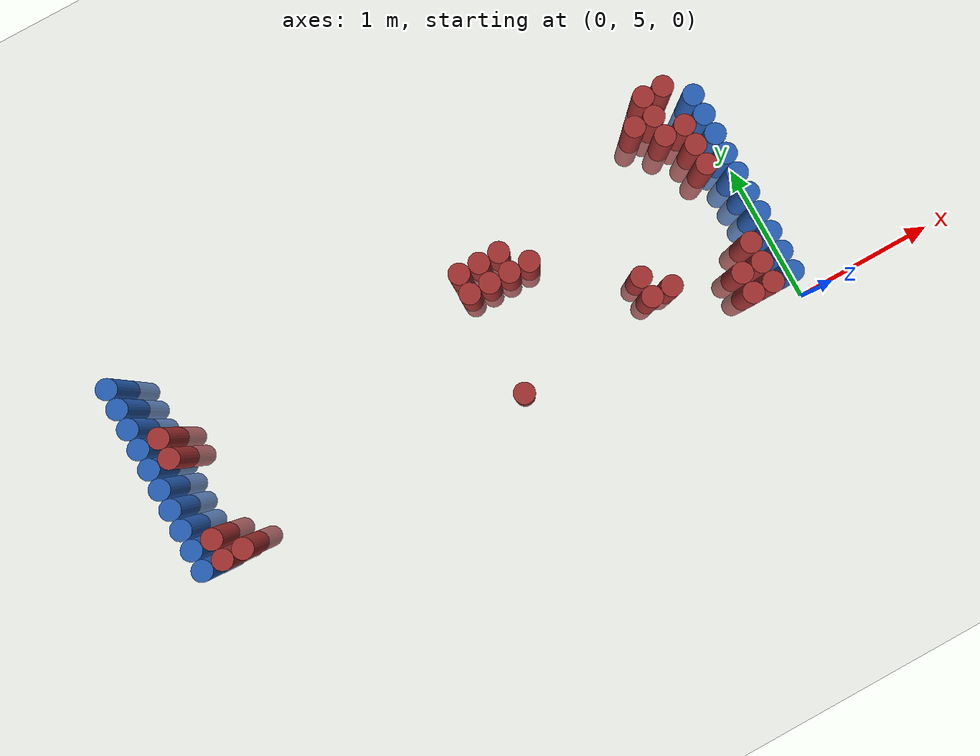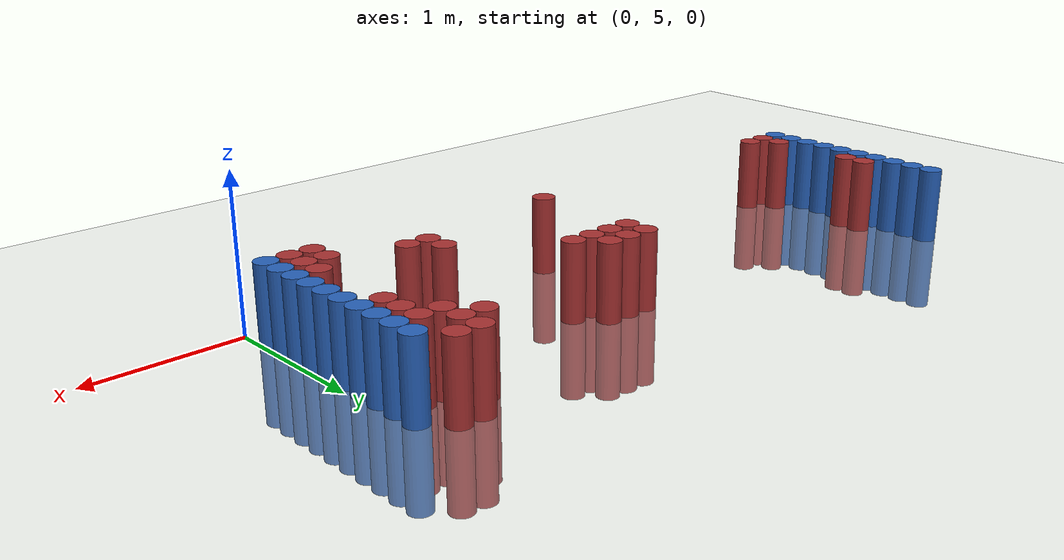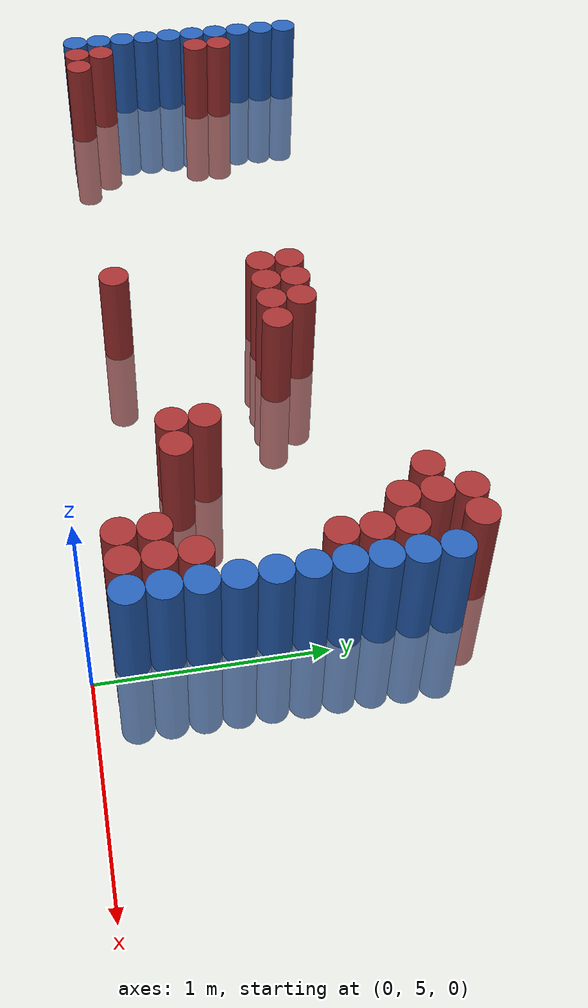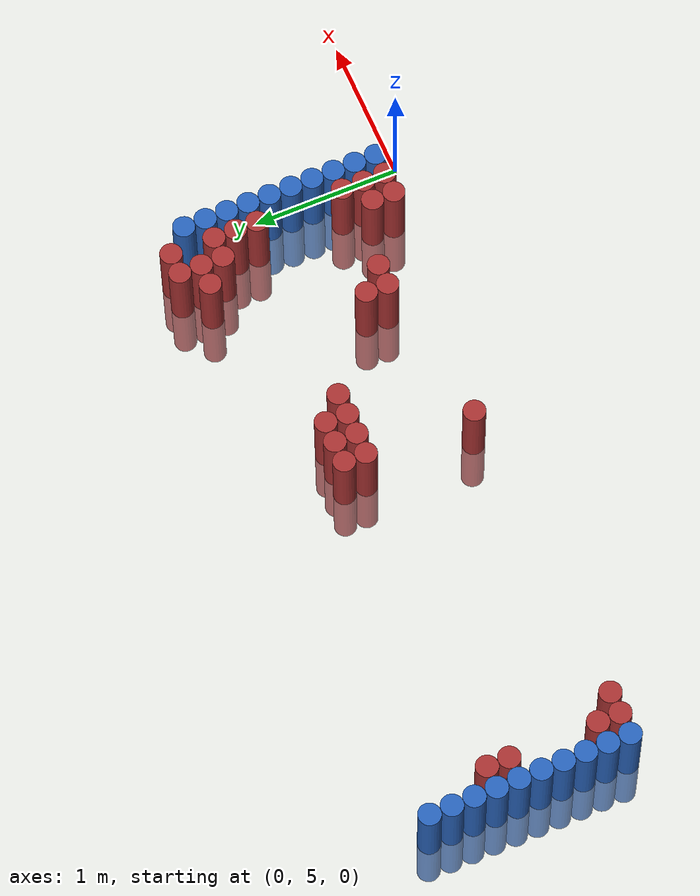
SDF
<sdf version="1.6">
 <world name="default">
  <model name="ground_plane">
   <static>1</static>
   <link name="link">
    <collision name="collision">
     <geometry><plane><normal>0 0 1</normal><size>100 100</size></plane></geometry>
     <surface><friction><ode><mu>100</mu><mu2>50</mu2></ode></friction></surface>
    </collision>
    <visual name="visual">
     <cast_shadows>0</cast_shadows>
     <geometry><plane><normal>0 0 1</normal><size>100 100</size></plane></geometry>
     <material>
      <script><uri>file://media/materials/scripts/gazebo.material</uri><name>Gazebo/Grey</name></script>
     </material>
    </visual>
   </link>
  </model>
  <model name="unit_cylinder_97">
   <static>1</static>
   <pose>-4.425000 5.325000 0.000000 0.000000 0.000000 0.000000</pose>
   <link name="link">
    <inertial>
     <mass>1</mass>
     <inertia><ixx>0.145833</ixx><ixy>0</ixy><ixz>0</ixz><iyy>0.145833</iyy><iyz>0</iyz><izz>0.125</izz></inertia>
    </inertial>
    <collision name="collision">
     <geometry><cylinder><radius>0.075000</radius><length>1</length></cylinder></geometry>
    </collision>
    <visual name="visual">
     <geometry><cylinder><radius>0.075000</radius><length>1</length></cylinder></geometry>
     <material>
      <ambient>0.152000 0.379000 0.720000 1</ambient>
      <diffuse>0.152000 0.379000 0.720000 1</diffuse>
     </material>
     <material>
      <script><name>Gazebo/Grey</name><uri>file://media/materials/scripts/gazebo.material</uri></script>
     </material>
    </visual>
   </link>
  </model>
  <model name="unit_cylinder_98">
   <static>1</static>
   <pose>-4.425000 5.475000 0.000000 0.000000 0.000000 0.000000</pose>
   <link name="link">
    <inertial>
     <mass>1</mass>
     <inertia><ixx>0.145833</ixx><ixy>0</ixy><ixz>0</ixz><iyy>0.145833</iyy><iyz>0</iyz><izz>0.125</izz></inertia>
    </inertial>
    <collision name="collision">
     <geometry><cylinder><radius>0.075000</radius><length>1</length></cylinder></geometry>
    </collision>
    <visual name="visual">
     <geometry><cylinder><radius>0.075000</radius><length>1</length></cylinder></geometry>
     <material>
      <ambient>0.152000 0.379000 0.720000 1</ambient>
      <diffuse>0.152000 0.379000 0.720000 1</diffuse>
     </material>
     <material>
      <script><name>Gazebo/Grey</name><uri>file://media/materials/scripts/gazebo.material</uri></script>
     </material>
    </visual>
   </link>
  </model>
  <model name="unit_cylinder_99">
   <static>1</static>
   <pose>-4.425000 5.625000 0.000000 0.000000 0.000000 0.000000</pose>
   <link name="link">
    <inertial>
     <mass>1</mass>
     <inertia><ixx>0.145833</ixx><ixy>0</ixy><ixz>0</ixz><iyy>0.145833</iyy><iyz>0</iyz><izz>0.125</izz></inertia>
    </inertial>
    <collision name="collision">
     <geometry><cylinder><radius>0.075000</radius><length>1</length></cylinder></geometry>
    </collision>
    <visual name="visual">
     <geometry><cylinder><radius>0.075000</radius><length>1</length></cylinder></geometry>
     <material>
      <ambient>0.152000 0.379000 0.720000 1</ambient>
      <diffuse>0.152000 0.379000 0.720000 1</diffuse>
     </material>
     <material>
      <script><name>Gazebo/Grey</name><uri>file://media/materials/scripts/gazebo.material</uri></script>
     </material>
    </visual>
   </link>
  </model>
  <model name="unit_cylinder_100">
   <static>1</static>
   <pose>-4.425000 5.775000 0.000000 0.000000 0.000000 0.000000</pose>
   <link name="link">
    <inertial>
     <mass>1</mass>
     <inertia><ixx>0.145833</ixx><ixy>0</ixy><ixz>0</ixz><iyy>0.145833</iyy><iyz>0</iyz><izz>0.125</izz></inertia>
    </inertial>
    <collision name="collision">
     <geometry><cylinder><radius>0.075000</radius><length>1</length></cylinder></geometry>
    </collision>
    <visual name="visual">
     <geometry><cylinder><radius>0.075000</radius><length>1</length></cylinder></geometry>
     <material>
      <ambient>0.152000 0.379000 0.720000 1</ambient>
      <diffuse>0.152000 0.379000 0.720000 1</diffuse>
     </material>
     <material>
      <script><name>Gazebo/Grey</name><uri>file://media/materials/scripts/gazebo.material</uri></script>
     </material>
    </visual>
   </link>
  </model>
  <model name="unit_cylinder_101">
   <static>1</static>
   <pose>-4.425000 5.925000 0.000000 0.000000 0.000000 0.000000</pose>
   <link name="link">
    <inertial>
     <mass>1</mass>
     <inertia><ixx>0.145833</ixx><ixy>0</ixy><ixz>0</ixz><iyy>0.145833</iyy><iyz>0</iyz><izz>0.125</izz></inertia>
    </inertial>
    <collision name="collision">
     <geometry><cylinder><radius>0.075000</radius><length>1</length></cylinder></geometry>
    </collision>
    <visual name="visual">
     <geometry><cylinder><radius>0.075000</radius><length>1</length></cylinder></geometry>
     <material>
      <ambient>0.152000 0.379000 0.720000 1</ambient>
      <diffuse>0.152000 0.379000 0.720000 1</diffuse>
     </material>
     <material>
      <script><name>Gazebo/Grey</name><uri>file://media/materials/scripts/gazebo.material</uri></script>
     </material>
    </visual>
   </link>
  </model>
  <model name="unit_cylinder_102">
   <static>1</static>
   <pose>-4.425000 6.075000 0.000000 0.000000 0.000000 0.000000</pose>
   <link name="link">
    <inertial>
     <mass>1</mass>
     <inertia><ixx>0.145833</ixx><ixy>0</ixy><ixz>0</ixz><iyy>0.145833</iyy><iyz>0</iyz><izz>0.125</izz></inertia>
    </inertial>
    <collision name="collision">
     <geometry><cylinder><radius>0.075000</radius><length>1</length></cylinder></geometry>
    </collision>
    <visual name="visual">
     <geometry><cylinder><radius>0.075000</radius><length>1</length></cylinder></geometry>
     <material>
      <ambient>0.152000 0.379000 0.720000 1</ambient>
      <diffuse>0.152000 0.379000 0.720000 1</diffuse>
     </material>
     <material>
      <script><name>Gazebo/Grey</name><uri>file://media/materials/scripts/gazebo.material</uri></script>
     </material>
    </visual>
   </link>
  </model>
  <model name="unit_cylinder_103">
   <static>1</static>
   <pose>-4.425000 6.225000 0.000000 0.000000 0.000000 0.000000</pose>
   <link name="link">
    <inertial>
     <mass>1</mass>
     <inertia><ixx>0.145833</ixx><ixy>0</ixy><ixz>0</ixz><iyy>0.145833</iyy><iyz>0</iyz><izz>0.125</izz></inertia>
    </inertial>
    <collision name="collision">
     <geometry><cylinder><radius>0.075000</radius><length>1</length></cylinder></geometry>
    </collision>
    <visual name="visual">
     <geometry><cylinder><radius>0.075000</radius><length>1</length></cylinder></geometry>
     <material>
      <ambient>0.152000 0.379000 0.720000 1</ambient>
      <diffuse>0.152000 0.379000 0.720000 1</diffuse>
     </material>
     <material>
      <script><name>Gazebo/Grey</name><uri>file://media/materials/scripts/gazebo.material</uri></script>
     </material>
    </visual>
   </link>
  </model>
  <model name="unit_cylinder_104">
   <static>1</static>
   <pose>-4.425000 6.375000 0.000000 0.000000 0.000000 0.000000</pose>
   <link name="link">
    <inertial>
     <mass>1</mass>
     <inertia><ixx>0.145833</ixx><ixy>0</ixy><ixz>0</ixz><iyy>0.145833</iyy><iyz>0</iyz><izz>0.125</izz></inertia>
    </inertial>
    <collision name="collision">
     <geometry><cylinder><radius>0.075000</radius><length>1</length></cylinder></geometry>
    </collision>
    <visual name="visual">
     <geometry><cylinder><radius>0.075000</radius><length>1</length></cylinder></geometry>
     <material>
      <ambient>0.152000 0.379000 0.720000 1</ambient>
      <diffuse>0.152000 0.379000 0.720000 1</diffuse>
     </material>
     <material>
      <script><name>Gazebo/Grey</name><uri>file://media/materials/scripts/gazebo.material</uri></script>
     </material>
    </visual>
   </link>
  </model>
  <model name="unit_cylinder_105">
   <static>1</static>
   <pose>-4.425000 6.525000 0.000000 0.000000 0.000000 0.000000</pose>
   <link name="link">
    <inertial>
     <mass>1</mass>
     <inertia><ixx>0.145833</ixx><ixy>0</ixy><ixz>0</ixz><iyy>0.145833</iyy><iyz>0</iyz><izz>0.125</izz></inertia>
    </inertial>
    <collision name="collision">
     <geometry><cylinder><radius>0.075000</radius><length>1</length></cylinder></geometry>
    </collision>
    <visual name="visual">
     <geometry><cylinder><radius>0.075000</radius><length>1</length></cylinder></geometry>
     <material>
      <ambient>0.152000 0.379000 0.720000 1</ambient>
      <diffuse>0.152000 0.379000 0.720000 1</diffuse>
     </material>
     <material>
      <script><name>Gazebo/Grey</name><uri>file://media/materials/scripts/gazebo.material</uri></script>
     </material>
    </visual>
   </link>
  </model>
  <model name="unit_cylinder_106">
   <static>1</static>
   <pose>-4.425000 6.675000 0.000000 0.000000 0.000000 0.000000</pose>
   <link name="link">
    <inertial>
     <mass>1</mass>
     <inertia><ixx>0.145833</ixx><ixy>0</ixy><ixz>0</ixz><iyy>0.145833</iyy><iyz>0</iyz><izz>0.125</izz></inertia>
    </inertial>
    <collision name="collision">
     <geometry><cylinder><radius>0.075000</radius><length>1</length></cylinder></geometry>
    </collision>
    <visual name="visual">
     <geometry><cylinder><radius>0.075000</radius><length>1</length></cylinder></geometry>
     <material>
      <ambient>0.152000 0.379000 0.720000 1</ambient>
      <diffuse>0.152000 0.379000 0.720000 1</diffuse>
     </material>
     <material>
      <script><name>Gazebo/Grey</name><uri>file://media/materials/scripts/gazebo.material</uri></script>
     </material>
    </visual>
   </link>
  </model>
  <model name="unit_cylinder_126">
   <static>1</static>
   <pose>-4.275000 5.325000 0.000000 0.000000 0.000000 0.000000</pose>
   <link name="link">
    <inertial>
     <mass>1</mass>
     <inertia><ixx>0.145833</ixx><ixy>0</ixy><ixz>0</ixz><iyy>0.145833</iyy><iyz>0</iyz><izz>0.125</izz></inertia>
    </inertial>
    <collision name="collision">
     <geometry><cylinder><radius>0.075000</radius><length>1</length></cylinder></geometry>
    </collision>
    <visual name="visual">
     <geometry><cylinder><radius>0.075000</radius><length>1</length></cylinder></geometry>
     <material>
      <ambient>0.648000 0.192000 0.192000 1</ambient>
      <diffuse>0.648000 0.192000 0.192000 1</diffuse>
     </material>
     <material>
      <script><name>Gazebo/Grey</name><uri>file://media/materials/scripts/gazebo.material</uri></script>
     </material>
    </visual>
   </link>
  </model>
  <model name="unit_cylinder_127">
   <static>1</static>
   <pose>-4.275000 5.475000 0.000000 0.000000 0.000000 0.000000</pose>
   <link name="link">
    <inertial>
     <mass>1</mass>
     <inertia><ixx>0.145833</ixx><ixy>0</ixy><ixz>0</ixz><iyy>0.145833</iyy><iyz>0</iyz><izz>0.125</izz></inertia>
    </inertial>
    <collision name="collision">
     <geometry><cylinder><radius>0.075000</radius><length>1</length></cylinder></geometry>
    </collision>
    <visual name="visual">
     <geometry><cylinder><radius>0.075000</radius><length>1</length></cylinder></geometry>
     <material>
      <ambient>0.648000 0.192000 0.192000 1</ambient>
      <diffuse>0.648000 0.192000 0.192000 1</diffuse>
     </material>
     <material>
      <script><name>Gazebo/Grey</name><uri>file://media/materials/scripts/gazebo.material</uri></script>
     </material>
    </visual>
   </link>
  </model>
  <model name="unit_cylinder_128">
   <static>1</static>
   <pose>-4.275000 6.075000 0.000000 0.000000 0.000000 0.000000</pose>
   <link name="link">
    <inertial>
     <mass>1</mass>
     <inertia><ixx>0.145833</ixx><ixy>0</ixy><ixz>0</ixz><iyy>0.145833</iyy><iyz>0</iyz><izz>0.125</izz></inertia>
    </inertial>
    <collision name="collision">
     <geometry><cylinder><radius>0.075000</radius><length>1</length></cylinder></geometry>
    </collision>
    <visual name="visual">
     <geometry><cylinder><radius>0.075000</radius><length>1</length></cylinder></geometry>
     <material>
      <ambient>0.648000 0.192000 0.192000 1</ambient>
      <diffuse>0.648000 0.192000 0.192000 1</diffuse>
     </material>
     <material>
      <script><name>Gazebo/Grey</name><uri>file://media/materials/scripts/gazebo.material</uri></script>
     </material>
    </visual>
   </link>
  </model>
  <model name="unit_cylinder_129">
   <static>1</static>
   <pose>-4.275000 6.225000 0.000000 0.000000 0.000000 0.000000</pose>
   <link name="link">
    <inertial>
     <mass>1</mass>
     <inertia><ixx>0.145833</ixx><ixy>0</ixy><ixz>0</ixz><iyy>0.145833</iyy><iyz>0</iyz><izz>0.125</izz></inertia>
    </inertial>
    <collision name="collision">
     <geometry><cylinder><radius>0.075000</radius><length>1</length></cylinder></geometry>
    </collision>
    <visual name="visual">
     <geometry><cylinder><radius>0.075000</radius><length>1</length></cylinder></geometry>
     <material>
      <ambient>0.648000 0.192000 0.192000 1</ambient>
      <diffuse>0.648000 0.192000 0.192000 1</diffuse>
     </material>
     <material>
      <script><name>Gazebo/Grey</name><uri>file://media/materials/scripts/gazebo.material</uri></script>
     </material>
    </visual>
   </link>
  </model>
  <model name="unit_cylinder_140">
   <static>1</static>
   <pose>-4.125000 5.325000 0.000000 0.000000 0.000000 0.000000</pose>
   <link name="link">
    <inertial>
     <mass>1</mass>
     <inertia><ixx>0.145833</ixx><ixy>0</ixy><ixz>0</ixz><iyy>0.145833</iyy><iyz>0</iyz><izz>0.125</izz></inertia>
    </inertial>
    <collision name="collision">
     <geometry><cylinder><radius>0.075000</radius><length>1</length></cylinder></geometry>
    </collision>
    <visual name="visual">
     <geometry><cylinder><radius>0.075000</radius><length>1</length></cylinder></geometry>
     <material>
      <ambient>0.648000 0.192000 0.192000 1</ambient>
      <diffuse>0.648000 0.192000 0.192000 1</diffuse>
     </material>
     <material>
      <script><name>Gazebo/Grey</name><uri>file://media/materials/scripts/gazebo.material</uri></script>
     </material>
    </visual>
   </link>
  </model>
  <model name="unit_cylinder_191">
   <static>1</static>
   <pose>-2.025000 5.325000 0.000000 0.000000 0.000000 0.000000</pose>
   <link name="link">
    <inertial>
     <mass>1</mass>
     <inertia><ixx>0.145833</ixx><ixy>0</ixy><ixz>0</ixz><iyy>0.145833</iyy><iyz>0</iyz><izz>0.125</izz></inertia>
    </inertial>
    <collision name="collision">
     <geometry><cylinder><radius>0.075000</radius><length>1</length></cylinder></geometry>
    </collision>
    <visual name="visual">
     <geometry><cylinder><radius>0.075000</radius><length>1</length></cylinder></geometry>
     <material>
      <ambient>0.648000 0.192000 0.192000 1</ambient>
      <diffuse>0.648000 0.192000 0.192000 1</diffuse>
     </material>
     <material>
      <script><name>Gazebo/Grey</name><uri>file://media/materials/scripts/gazebo.material</uri></script>
     </material>
    </visual>
   </link>
  </model>
  <model name="unit_cylinder_192">
   <static>1</static>
   <pose>-2.025000 6.075000 0.000000 0.000000 0.000000 0.000000</pose>
   <link name="link">
    <inertial>
     <mass>1</mass>
     <inertia><ixx>0.145833</ixx><ixy>0</ixy><ixz>0</ixz><iyy>0.145833</iyy><iyz>0</iyz><izz>0.125</izz></inertia>
    </inertial>
    <collision name="collision">
     <geometry><cylinder><radius>0.075000</radius><length>1</length></cylinder></geometry>
    </collision>
    <visual name="visual">
     <geometry><cylinder><radius>0.075000</radius><length>1</length></cylinder></geometry>
     <material>
      <ambient>0.648000 0.192000 0.192000 1</ambient>
      <diffuse>0.648000 0.192000 0.192000 1</diffuse>
     </material>
     <material>
      <script><name>Gazebo/Grey</name><uri>file://media/materials/scripts/gazebo.material</uri></script>
     </material>
    </visual>
   </link>
  </model>
  <model name="unit_cylinder_193">
   <static>1</static>
   <pose>-2.025000 6.225000 0.000000 0.000000 0.000000 0.000000</pose>
   <link name="link">
    <inertial>
     <mass>1</mass>
     <inertia><ixx>0.145833</ixx><ixy>0</ixy><ixz>0</ixz><iyy>0.145833</iyy><iyz>0</iyz><izz>0.125</izz></inertia>
    </inertial>
    <collision name="collision">
     <geometry><cylinder><radius>0.075000</radius><length>1</length></cylinder></geometry>
    </collision>
    <visual name="visual">
     <geometry><cylinder><radius>0.075000</radius><length>1</length></cylinder></geometry>
     <material>
      <ambient>0.648000 0.192000 0.192000 1</ambient>
      <diffuse>0.648000 0.192000 0.192000 1</diffuse>
     </material>
     <material>
      <script><name>Gazebo/Grey</name><uri>file://media/materials/scripts/gazebo.material</uri></script>
     </material>
    </visual>
   </link>
  </model>
  <model name="unit_cylinder_195">
   <static>1</static>
   <pose>-1.875000 6.075000 0.000000 0.000000 0.000000 0.000000</pose>
   <link name="link">
    <inertial>
     <mass>1</mass>
     <inertia><ixx>0.145833</ixx><ixy>0</ixy><ixz>0</ixz><iyy>0.145833</iyy><iyz>0</iyz><izz>0.125</izz></inertia>
    </inertial>
    <collision name="collision">
     <geometry><cylinder><radius>0.075000</radius><length>1</length></cylinder></geometry>
    </collision>
    <visual name="visual">
     <geometry><cylinder><radius>0.075000</radius><length>1</length></cylinder></geometry>
     <material>
      <ambient>0.648000 0.192000 0.192000 1</ambient>
      <diffuse>0.648000 0.192000 0.192000 1</diffuse>
     </material>
     <material>
      <script><name>Gazebo/Grey</name><uri>file://media/materials/scripts/gazebo.material</uri></script>
     </material>
    </visual>
   </link>
  </model>
  <model name="unit_cylinder_196">
   <static>1</static>
   <pose>-1.875000 6.225000 0.000000 0.000000 0.000000 0.000000</pose>
   <link name="link">
    <inertial>
     <mass>1</mass>
     <inertia><ixx>0.145833</ixx><ixy>0</ixy><ixz>0</ixz><iyy>0.145833</iyy><iyz>0</iyz><izz>0.125</izz></inertia>
    </inertial>
    <collision name="collision">
     <geometry><cylinder><radius>0.075000</radius><length>1</length></cylinder></geometry>
    </collision>
    <visual name="visual">
     <geometry><cylinder><radius>0.075000</radius><length>1</length></cylinder></geometry>
     <material>
      <ambient>0.648000 0.192000 0.192000 1</ambient>
      <diffuse>0.648000 0.192000 0.192000 1</diffuse>
     </material>
     <material>
      <script><name>Gazebo/Grey</name><uri>file://media/materials/scripts/gazebo.material</uri></script>
     </material>
    </visual>
   </link>
  </model>
  <model name="unit_cylinder_199">
   <static>1</static>
   <pose>-1.725000 6.075000 0.000000 0.000000 0.000000 0.000000</pose>
   <link name="link">
    <inertial>
     <mass>1</mass>
     <inertia><ixx>0.145833</ixx><ixy>0</ixy><ixz>0</ixz><iyy>0.145833</iyy><iyz>0</iyz><izz>0.125</izz></inertia>
    </inertial>
    <collision name="collision">
     <geometry><cylinder><radius>0.075000</radius><length>1</length></cylinder></geometry>
    </collision>
    <visual name="visual">
     <geometry><cylinder><radius>0.075000</radius><length>1</length></cylinder></geometry>
     <material>
      <ambient>0.648000 0.192000 0.192000 1</ambient>
      <diffuse>0.648000 0.192000 0.192000 1</diffuse>
     </material>
     <material>
      <script><name>Gazebo/Grey</name><uri>file://media/materials/scripts/gazebo.material</uri></script>
     </material>
    </visual>
   </link>
  </model>
  <model name="unit_cylinder_200">
   <static>1</static>
   <pose>-1.725000 6.225000 0.000000 0.000000 0.000000 0.000000</pose>
   <link name="link">
    <inertial>
     <mass>1</mass>
     <inertia><ixx>0.145833</ixx><ixy>0</ixy><ixz>0</ixz><iyy>0.145833</iyy><iyz>0</iyz><izz>0.125</izz></inertia>
    </inertial>
    <collision name="collision">
     <geometry><cylinder><radius>0.075000</radius><length>1</length></cylinder></geometry>
    </collision>
    <visual name="visual">
     <geometry><cylinder><radius>0.075000</radius><length>1</length></cylinder></geometry>
     <material>
      <ambient>0.648000 0.192000 0.192000 1</ambient>
      <diffuse>0.648000 0.192000 0.192000 1</diffuse>
     </material>
     <material>
      <script><name>Gazebo/Grey</name><uri>file://media/materials/scripts/gazebo.material</uri></script>
     </material>
    </visual>
   </link>
  </model>
  <model name="unit_cylinder_202">
   <static>1</static>
   <pose>-1.575000 6.075000 0.000000 0.000000 0.000000 0.000000</pose>
   <link name="link">
    <inertial>
     <mass>1</mass>
     <inertia><ixx>0.145833</ixx><ixy>0</ixy><ixz>0</ixz><iyy>0.145833</iyy><iyz>0</iyz><izz>0.125</izz></inertia>
    </inertial>
    <collision name="collision">
     <geometry><cylinder><radius>0.075000</radius><length>1</length></cylinder></geometry>
    </collision>
    <visual name="visual">
     <geometry><cylinder><radius>0.075000</radius><length>1</length></cylinder></geometry>
     <material>
      <ambient>0.648000 0.192000 0.192000 1</ambient>
      <diffuse>0.648000 0.192000 0.192000 1</diffuse>
     </material>
     <material>
      <script><name>Gazebo/Grey</name><uri>file://media/materials/scripts/gazebo.material</uri></script>
     </material>
    </visual>
   </link>
  </model>
  <model name="unit_cylinder_216">
   <static>1</static>
   <pose>-0.975000 5.475000 0.000000 0.000000 0.000000 0.000000</pose>
   <link name="link">
    <inertial>
     <mass>1</mass>
     <inertia><ixx>0.145833</ixx><ixy>0</ixy><ixz>0</ixz><iyy>0.145833</iyy><iyz>0</iyz><izz>0.125</izz></inertia>
    </inertial>
    <collision name="collision">
     <geometry><cylinder><radius>0.075000</radius><length>1</length></cylinder></geometry>
    </collision>
    <visual name="visual">
     <geometry><cylinder><radius>0.075000</radius><length>1</length></cylinder></geometry>
     <material>
      <ambient>0.648000 0.192000 0.192000 1</ambient>
      <diffuse>0.648000 0.192000 0.192000 1</diffuse>
     </material>
     <material>
      <script><name>Gazebo/Grey</name><uri>file://media/materials/scripts/gazebo.material</uri></script>
     </material>
    </visual>
   </link>
  </model>
  <model name="unit_cylinder_217">
   <static>1</static>
   <pose>-0.975000 5.625000 0.000000 0.000000 0.000000 0.000000</pose>
   <link name="link">
    <inertial>
     <mass>1</mass>
     <inertia><ixx>0.145833</ixx><ixy>0</ixy><ixz>0</ixz><iyy>0.145833</iyy><iyz>0</iyz><izz>0.125</izz></inertia>
    </inertial>
    <collision name="collision">
     <geometry><cylinder><radius>0.075000</radius><length>1</length></cylinder></geometry>
    </collision>
    <visual name="visual">
     <geometry><cylinder><radius>0.075000</radius><length>1</length></cylinder></geometry>
     <material>
      <ambient>0.648000 0.192000 0.192000 1</ambient>
      <diffuse>0.648000 0.192000 0.192000 1</diffuse>
     </material>
     <material>
      <script><name>Gazebo/Grey</name><uri>file://media/materials/scripts/gazebo.material</uri></script>
     </material>
    </visual>
   </link>
  </model>
  <model name="unit_cylinder_220">
   <static>1</static>
   <pose>-0.825000 5.475000 0.000000 0.000000 0.000000 0.000000</pose>
   <link name="link">
    <inertial>
     <mass>1</mass>
     <inertia><ixx>0.145833</ixx><ixy>0</ixy><ixz>0</ixz><iyy>0.145833</iyy><iyz>0</iyz><izz>0.125</izz></inertia>
    </inertial>
    <collision name="collision">
     <geometry><cylinder><radius>0.075000</radius><length>1</length></cylinder></geometry>
    </collision>
    <visual name="visual">
     <geometry><cylinder><radius>0.075000</radius><length>1</length></cylinder></geometry>
     <material>
      <ambient>0.648000 0.192000 0.192000 1</ambient>
      <diffuse>0.648000 0.192000 0.192000 1</diffuse>
     </material>
     <material>
      <script><name>Gazebo/Grey</name><uri>file://media/materials/scripts/gazebo.material</uri></script>
     </material>
    </visual>
   </link>
  </model>
  <model name="unit_cylinder_229">
   <static>1</static>
   <pose>-0.525000 6.525000 0.000000 0.000000 0.000000 0.000000</pose>
   <link name="link">
    <inertial>
     <mass>1</mass>
     <inertia><ixx>0.145833</ixx><ixy>0</ixy><ixz>0</ixz><iyy>0.145833</iyy><iyz>0</iyz><izz>0.125</izz></inertia>
    </inertial>
    <collision name="collision">
     <geometry><cylinder><radius>0.075000</radius><length>1</length></cylinder></geometry>
    </collision>
    <visual name="visual">
     <geometry><cylinder><radius>0.075000</radius><length>1</length></cylinder></geometry>
     <material>
      <ambient>0.648000 0.192000 0.192000 1</ambient>
      <diffuse>0.648000 0.192000 0.192000 1</diffuse>
     </material>
     <material>
      <script><name>Gazebo/Grey</name><uri>file://media/materials/scripts/gazebo.material</uri></script>
     </material>
    </visual>
   </link>
  </model>
  <model name="unit_cylinder_239">
   <static>1</static>
   <pose>-0.375000 5.175000 0.000000 0.000000 0.000000 0.000000</pose>
   <link name="link">
    <inertial>
     <mass>1</mass>
     <inertia><ixx>0.145833</ixx><ixy>0</ixy><ixz>0</ixz><iyy>0.145833</iyy><iyz>0</iyz><izz>0.125</izz></inertia>
    </inertial>
    <collision name="collision">
     <geometry><cylinder><radius>0.075000</radius><length>1</length></cylinder></geometry>
    </collision>
    <visual name="visual">
     <geometry><cylinder><radius>0.075000</radius><length>1</length></cylinder></geometry>
     <material>
      <ambient>0.648000 0.192000 0.192000 1</ambient>
      <diffuse>0.648000 0.192000 0.192000 1</diffuse>
     </material>
     <material>
      <script><name>Gazebo/Grey</name><uri>file://media/materials/scripts/gazebo.material</uri></script>
     </material>
    </visual>
   </link>
  </model>
  <model name="unit_cylinder_240">
   <static>1</static>
   <pose>-0.375000 5.325000 0.000000 0.000000 0.000000 0.000000</pose>
   <link name="link">
    <inertial>
     <mass>1</mass>
     <inertia><ixx>0.145833</ixx><ixy>0</ixy><ixz>0</ixz><iyy>0.145833</iyy><iyz>0</iyz><izz>0.125</izz></inertia>
    </inertial>
    <collision name="collision">
     <geometry><cylinder><radius>0.075000</radius><length>1</length></cylinder></geometry>
    </collision>
    <visual name="visual">
     <geometry><cylinder><radius>0.075000</radius><length>1</length></cylinder></geometry>
     <material>
      <ambient>0.648000 0.192000 0.192000 1</ambient>
      <diffuse>0.648000 0.192000 0.192000 1</diffuse>
     </material>
     <material>
      <script><name>Gazebo/Grey</name><uri>file://media/materials/scripts/gazebo.material</uri></script>
     </material>
    </visual>
   </link>
  </model>
  <model name="unit_cylinder_241">
   <static>1</static>
   <pose>-0.375000 6.375000 0.000000 0.000000 0.000000 0.000000</pose>
   <link name="link">
    <inertial>
     <mass>1</mass>
     <inertia><ixx>0.145833</ixx><ixy>0</ixy><ixz>0</ixz><iyy>0.145833</iyy><iyz>0</iyz><izz>0.125</izz></inertia>
    </inertial>
    <collision name="collision">
     <geometry><cylinder><radius>0.075000</radius><length>1</length></cylinder></geometry>
    </collision>
    <visual name="visual">
     <geometry><cylinder><radius>0.075000</radius><length>1</length></cylinder></geometry>
     <material>
      <ambient>0.648000 0.192000 0.192000 1</ambient>
      <diffuse>0.648000 0.192000 0.192000 1</diffuse>
     </material>
     <material>
      <script><name>Gazebo/Grey</name><uri>file://media/materials/scripts/gazebo.material</uri></script>
     </material>
    </visual>
   </link>
  </model>
  <model name="unit_cylinder_242">
   <static>1</static>
   <pose>-0.375000 6.525000 0.000000 0.000000 0.000000 0.000000</pose>
   <link name="link">
    <inertial>
     <mass>1</mass>
     <inertia><ixx>0.145833</ixx><ixy>0</ixy><ixz>0</ixz><iyy>0.145833</iyy><iyz>0</iyz><izz>0.125</izz></inertia>
    </inertial>
    <collision name="collision">
     <geometry><cylinder><radius>0.075000</radius><length>1</length></cylinder></geometry>
    </collision>
    <visual name="visual">
     <geometry><cylinder><radius>0.075000</radius><length>1</length></cylinder></geometry>
     <material>
      <ambient>0.648000 0.192000 0.192000 1</ambient>
      <diffuse>0.648000 0.192000 0.192000 1</diffuse>
     </material>
     <material>
      <script><name>Gazebo/Grey</name><uri>file://media/materials/scripts/gazebo.material</uri></script>
     </material>
    </visual>
   </link>
  </model>
  <model name="unit_cylinder_243">
   <static>1</static>
   <pose>-0.375000 6.675000 0.000000 0.000000 0.000000 0.000000</pose>
   <link name="link">
    <inertial>
     <mass>1</mass>
     <inertia><ixx>0.145833</ixx><ixy>0</ixy><ixz>0</ixz><iyy>0.145833</iyy><iyz>0</iyz><izz>0.125</izz></inertia>
    </inertial>
    <collision name="collision">
     <geometry><cylinder><radius>0.075000</radius><length>1</length></cylinder></geometry>
    </collision>
    <visual name="visual">
     <geometry><cylinder><radius>0.075000</radius><length>1</length></cylinder></geometry>
     <material>
      <ambient>0.648000 0.192000 0.192000 1</ambient>
      <diffuse>0.648000 0.192000 0.192000 1</diffuse>
     </material>
     <material>
      <script><name>Gazebo/Grey</name><uri>file://media/materials/scripts/gazebo.material</uri></script>
     </material>
    </visual>
   </link>
  </model>
  <model name="unit_cylinder_250">
   <static>1</static>
   <pose>-0.225000 5.175000 0.000000 0.000000 0.000000 0.000000</pose>
   <link name="link">
    <inertial>
     <mass>1</mass>
     <inertia><ixx>0.145833</ixx><ixy>0</ixy><ixz>0</ixz><iyy>0.145833</iyy><iyz>0</iyz><izz>0.125</izz></inertia>
    </inertial>
    <collision name="collision">
     <geometry><cylinder><radius>0.075000</radius><length>1</length></cylinder></geometry>
    </collision>
    <visual name="visual">
     <geometry><cylinder><radius>0.075000</radius><length>1</length></cylinder></geometry>
     <material>
      <ambient>0.648000 0.192000 0.192000 1</ambient>
      <diffuse>0.648000 0.192000 0.192000 1</diffuse>
     </material>
     <material>
      <script><name>Gazebo/Grey</name><uri>file://media/materials/scripts/gazebo.material</uri></script>
     </material>
    </visual>
   </link>
  </model>
  <model name="unit_cylinder_251">
   <static>1</static>
   <pose>-0.225000 5.325000 0.000000 0.000000 0.000000 0.000000</pose>
   <link name="link">
    <inertial>
     <mass>1</mass>
     <inertia><ixx>0.145833</ixx><ixy>0</ixy><ixz>0</ixz><iyy>0.145833</iyy><iyz>0</iyz><izz>0.125</izz></inertia>
    </inertial>
    <collision name="collision">
     <geometry><cylinder><radius>0.075000</radius><length>1</length></cylinder></geometry>
    </collision>
    <visual name="visual">
     <geometry><cylinder><radius>0.075000</radius><length>1</length></cylinder></geometry>
     <material>
      <ambient>0.648000 0.192000 0.192000 1</ambient>
      <diffuse>0.648000 0.192000 0.192000 1</diffuse>
     </material>
     <material>
      <script><name>Gazebo/Grey</name><uri>file://media/materials/scripts/gazebo.material</uri></script>
     </material>
    </visual>
   </link>
  </model>
  <model name="unit_cylinder_252">
   <static>1</static>
   <pose>-0.225000 5.475000 0.000000 0.000000 0.000000 0.000000</pose>
   <link name="link">
    <inertial>
     <mass>1</mass>
     <inertia><ixx>0.145833</ixx><ixy>0</ixy><ixz>0</ixz><iyy>0.145833</iyy><iyz>0</iyz><izz>0.125</izz></inertia>
    </inertial>
    <collision name="collision">
     <geometry><cylinder><radius>0.075000</radius><length>1</length></cylinder></geometry>
    </collision>
    <visual name="visual">
     <geometry><cylinder><radius>0.075000</radius><length>1</length></cylinder></geometry>
     <material>
      <ambient>0.648000 0.192000 0.192000 1</ambient>
      <diffuse>0.648000 0.192000 0.192000 1</diffuse>
     </material>
     <material>
      <script><name>Gazebo/Grey</name><uri>file://media/materials/scripts/gazebo.material</uri></script>
     </material>
    </visual>
   </link>
  </model>
  <model name="unit_cylinder_253">
   <static>1</static>
   <pose>-0.225000 6.075000 0.000000 0.000000 0.000000 0.000000</pose>
   <link name="link">
    <inertial>
     <mass>1</mass>
     <inertia><ixx>0.145833</ixx><ixy>0</ixy><ixz>0</ixz><iyy>0.145833</iyy><iyz>0</iyz><izz>0.125</izz></inertia>
    </inertial>
    <collision name="collision">
     <geometry><cylinder><radius>0.075000</radius><length>1</length></cylinder></geometry>
    </collision>
    <visual name="visual">
     <geometry><cylinder><radius>0.075000</radius><length>1</length></cylinder></geometry>
     <material>
      <ambient>0.648000 0.192000 0.192000 1</ambient>
      <diffuse>0.648000 0.192000 0.192000 1</diffuse>
     </material>
     <material>
      <script><name>Gazebo/Grey</name><uri>file://media/materials/scripts/gazebo.material</uri></script>
     </material>
    </visual>
   </link>
  </model>
  <model name="unit_cylinder_254">
   <static>1</static>
   <pose>-0.225000 6.225000 0.000000 0.000000 0.000000 0.000000</pose>
   <link name="link">
    <inertial>
     <mass>1</mass>
     <inertia><ixx>0.145833</ixx><ixy>0</ixy><ixz>0</ixz><iyy>0.145833</iyy><iyz>0</iyz><izz>0.125</izz></inertia>
    </inertial>
    <collision name="collision">
     <geometry><cylinder><radius>0.075000</radius><length>1</length></cylinder></geometry>
    </collision>
    <visual name="visual">
     <geometry><cylinder><radius>0.075000</radius><length>1</length></cylinder></geometry>
     <material>
      <ambient>0.648000 0.192000 0.192000 1</ambient>
      <diffuse>0.648000 0.192000 0.192000 1</diffuse>
     </material>
     <material>
      <script><name>Gazebo/Grey</name><uri>file://media/materials/scripts/gazebo.material</uri></script>
     </material>
    </visual>
   </link>
  </model>
  <model name="unit_cylinder_255">
   <static>1</static>
   <pose>-0.225000 6.375000 0.000000 0.000000 0.000000 0.000000</pose>
   <link name="link">
    <inertial>
     <mass>1</mass>
     <inertia><ixx>0.145833</ixx><ixy>0</ixy><ixz>0</ixz><iyy>0.145833</iyy><iyz>0</iyz><izz>0.125</izz></inertia>
    </inertial>
    <collision name="collision">
     <geometry><cylinder><radius>0.075000</radius><length>1</length></cylinder></geometry>
    </collision>
    <visual name="visual">
     <geometry><cylinder><radius>0.075000</radius><length>1</length></cylinder></geometry>
     <material>
      <ambient>0.648000 0.192000 0.192000 1</ambient>
      <diffuse>0.648000 0.192000 0.192000 1</diffuse>
     </material>
     <material>
      <script><name>Gazebo/Grey</name><uri>file://media/materials/scripts/gazebo.material</uri></script>
     </material>
    </visual>
   </link>
  </model>
  <model name="unit_cylinder_256">
   <static>1</static>
   <pose>-0.225000 6.675000 0.000000 0.000000 0.000000 0.000000</pose>
   <link name="link">
    <inertial>
     <mass>1</mass>
     <inertia><ixx>0.145833</ixx><ixy>0</ixy><ixz>0</ixz><iyy>0.145833</iyy><iyz>0</iyz><izz>0.125</izz></inertia>
    </inertial>
    <collision name="collision">
     <geometry><cylinder><radius>0.075000</radius><length>1</length></cylinder></geometry>
    </collision>
    <visual name="visual">
     <geometry><cylinder><radius>0.075000</radius><length>1</length></cylinder></geometry>
     <material>
      <ambient>0.648000 0.192000 0.192000 1</ambient>
      <diffuse>0.648000 0.192000 0.192000 1</diffuse>
     </material>
     <material>
      <script><name>Gazebo/Grey</name><uri>file://media/materials/scripts/gazebo.material</uri></script>
     </material>
    </visual>
   </link>
  </model>
  <model name="unit_cylinder_265">
   <static>1</static>
   <pose>-0.075000 5.175000 0.000000 0.000000 0.000000 0.000000</pose>
   <link name="link">
    <inertial>
     <mass>1</mass>
     <inertia><ixx>0.145833</ixx><ixy>0</ixy><ixz>0</ixz><iyy>0.145833</iyy><iyz>0</iyz><izz>0.125</izz></inertia>
    </inertial>
    <collision name="collision">
     <geometry><cylinder><radius>0.075000</radius><length>1</length></cylinder></geometry>
    </collision>
    <visual name="visual">
     <geometry><cylinder><radius>0.075000</radius><length>1</length></cylinder></geometry>
     <material>
      <ambient>0.152000 0.379000 0.720000 1</ambient>
      <diffuse>0.152000 0.379000 0.720000 1</diffuse>
     </material>
     <material>
      <script><name>Gazebo/Grey</name><uri>file://media/materials/scripts/gazebo.material</uri></script>
     </material>
    </visual>
   </link>
  </model>
  <model name="unit_cylinder_266">
   <static>1</static>
   <pose>-0.075000 5.325000 0.000000 0.000000 0.000000 0.000000</pose>
   <link name="link">
    <inertial>
     <mass>1</mass>
     <inertia><ixx>0.145833</ixx><ixy>0</ixy><ixz>0</ixz><iyy>0.145833</iyy><iyz>0</iyz><izz>0.125</izz></inertia>
    </inertial>
    <collision name="collision">
     <geometry><cylinder><radius>0.075000</radius><length>1</length></cylinder></geometry>
    </collision>
    <visual name="visual">
     <geometry><cylinder><radius>0.075000</radius><length>1</length></cylinder></geometry>
     <material>
      <ambient>0.152000 0.379000 0.720000 1</ambient>
      <diffuse>0.152000 0.379000 0.720000 1</diffuse>
     </material>
     <material>
      <script><name>Gazebo/Grey</name><uri>file://media/materials/scripts/gazebo.material</uri></script>
     </material>
    </visual>
   </link>
  </model>
  <model name="unit_cylinder_267">
   <static>1</static>
   <pose>-0.075000 5.475000 0.000000 0.000000 0.000000 0.000000</pose>
   <link name="link">
    <inertial>
     <mass>1</mass>
     <inertia><ixx>0.145833</ixx><ixy>0</ixy><ixz>0</ixz><iyy>0.145833</iyy><iyz>0</iyz><izz>0.125</izz></inertia>
    </inertial>
    <collision name="collision">
     <geometry><cylinder><radius>0.075000</radius><length>1</length></cylinder></geometry>
    </collision>
    <visual name="visual">
     <geometry><cylinder><radius>0.075000</radius><length>1</length></cylinder></geometry>
     <material>
      <ambient>0.152000 0.379000 0.720000 1</ambient>
      <diffuse>0.152000 0.379000 0.720000 1</diffuse>
     </material>
     <material>
      <script><name>Gazebo/Grey</name><uri>file://media/materials/scripts/gazebo.material</uri></script>
     </material>
    </visual>
   </link>
  </model>
  <model name="unit_cylinder_268">
   <static>1</static>
   <pose>-0.075000 5.625000 0.000000 0.000000 0.000000 0.000000</pose>
   <link name="link">
    <inertial>
     <mass>1</mass>
     <inertia><ixx>0.145833</ixx><ixy>0</ixy><ixz>0</ixz><iyy>0.145833</iyy><iyz>0</iyz><izz>0.125</izz></inertia>
    </inertial>
    <collision name="collision">
     <geometry><cylinder><radius>0.075000</radius><length>1</length></cylinder></geometry>
    </collision>
    <visual name="visual">
     <geometry><cylinder><radius>0.075000</radius><length>1</length></cylinder></geometry>
     <material>
      <ambient>0.152000 0.379000 0.720000 1</ambient>
      <diffuse>0.152000 0.379000 0.720000 1</diffuse>
     </material>
     <material>
      <script><name>Gazebo/Grey</name><uri>file://media/materials/scripts/gazebo.material</uri></script>
     </material>
    </visual>
   </link>
  </model>
  <model name="unit_cylinder_269">
   <static>1</static>
   <pose>-0.075000 5.775000 0.000000 0.000000 0.000000 0.000000</pose>
   <link name="link">
    <inertial>
     <mass>1</mass>
     <inertia><ixx>0.145833</ixx><ixy>0</ixy><ixz>0</ixz><iyy>0.145833</iyy><iyz>0</iyz><izz>0.125</izz></inertia>
    </inertial>
    <collision name="collision">
     <geometry><cylinder><radius>0.075000</radius><length>1</length></cylinder></geometry>
    </collision>
    <visual name="visual">
     <geometry><cylinder><radius>0.075000</radius><length>1</length></cylinder></geometry>
     <material>
      <ambient>0.152000 0.379000 0.720000 1</ambient>
      <diffuse>0.152000 0.379000 0.720000 1</diffuse>
     </material>
     <material>
      <script><name>Gazebo/Grey</name><uri>file://media/materials/scripts/gazebo.material</uri></script>
     </material>
    </visual>
   </link>
  </model>
  <model name="unit_cylinder_270">
   <static>1</static>
   <pose>-0.075000 5.925000 0.000000 0.000000 0.000000 0.000000</pose>
   <link name="link">
    <inertial>
     <mass>1</mass>
     <inertia><ixx>0.145833</ixx><ixy>0</ixy><ixz>0</ixz><iyy>0.145833</iyy><iyz>0</iyz><izz>0.125</izz></inertia>
    </inertial>
    <collision name="collision">
     <geometry><cylinder><radius>0.075000</radius><length>1</length></cylinder></geometry>
    </collision>
    <visual name="visual">
     <geometry><cylinder><radius>0.075000</radius><length>1</length></cylinder></geometry>
     <material>
      <ambient>0.152000 0.379000 0.720000 1</ambient>
      <diffuse>0.152000 0.379000 0.720000 1</diffuse>
     </material>
     <material>
      <script><name>Gazebo/Grey</name><uri>file://media/materials/scripts/gazebo.material</uri></script>
     </material>
    </visual>
   </link>
  </model>
  <model name="unit_cylinder_271">
   <static>1</static>
   <pose>-0.075000 6.075000 0.000000 0.000000 0.000000 0.000000</pose>
   <link name="link">
    <inertial>
     <mass>1</mass>
     <inertia><ixx>0.145833</ixx><ixy>0</ixy><ixz>0</ixz><iyy>0.145833</iyy><iyz>0</iyz><izz>0.125</izz></inertia>
    </inertial>
    <collision name="collision">
     <geometry><cylinder><radius>0.075000</radius><length>1</length></cylinder></geometry>
    </collision>
    <visual name="visual">
     <geometry><cylinder><radius>0.075000</radius><length>1</length></cylinder></geometry>
     <material>
      <ambient>0.152000 0.379000 0.720000 1</ambient>
      <diffuse>0.152000 0.379000 0.720000 1</diffuse>
     </material>
     <material>
      <script><name>Gazebo/Grey</name><uri>file://media/materials/scripts/gazebo.material</uri></script>
     </material>
    </visual>
   </link>
  </model>
  <model name="unit_cylinder_272">
   <static>1</static>
   <pose>-0.075000 6.225000 0.000000 0.000000 0.000000 0.000000</pose>
   <link name="link">
    <inertial>
     <mass>1</mass>
     <inertia><ixx>0.145833</ixx><ixy>0</ixy><ixz>0</ixz><iyy>0.145833</iyy><iyz>0</iyz><izz>0.125</izz></inertia>
    </inertial>
    <collision name="collision">
     <geometry><cylinder><radius>0.075000</radius><length>1</length></cylinder></geometry>
    </collision>
    <visual name="visual">
     <geometry><cylinder><radius>0.075000</radius><length>1</length></cylinder></geometry>
     <material>
      <ambient>0.152000 0.379000 0.720000 1</ambient>
      <diffuse>0.152000 0.379000 0.720000 1</diffuse>
     </material>
     <material>
      <script><name>Gazebo/Grey</name><uri>file://media/materials/scripts/gazebo.material</uri></script>
     </material>
    </visual>
   </link>
  </model>
  <model name="unit_cylinder_273">
   <static>1</static>
   <pose>-0.075000 6.375000 0.000000 0.000000 0.000000 0.000000</pose>
   <link name="link">
    <inertial>
     <mass>1</mass>
     <inertia><ixx>0.145833</ixx><ixy>0</ixy><ixz>0</ixz><iyy>0.145833</iyy><iyz>0</iyz><izz>0.125</izz></inertia>
    </inertial>
    <collision name="collision">
     <geometry><cylinder><radius>0.075000</radius><length>1</length></cylinder></geometry>
    </collision>
    <visual name="visual">
     <geometry><cylinder><radius>0.075000</radius><length>1</length></cylinder></geometry>
     <material>
      <ambient>0.152000 0.379000 0.720000 1</ambient>
      <diffuse>0.152000 0.379000 0.720000 1</diffuse>
     </material>
     <material>
      <script><name>Gazebo/Grey</name><uri>file://media/materials/scripts/gazebo.material</uri></script>
     </material>
    </visual>
   </link>
  </model>
  <model name="unit_cylinder_274">
   <static>1</static>
   <pose>-0.075000 6.525000 0.000000 0.000000 0.000000 0.000000</pose>
   <link name="link">
    <inertial>
     <mass>1</mass>
     <inertia><ixx>0.145833</ixx><ixy>0</ixy><ixz>0</ixz><iyy>0.145833</iyy><iyz>0</iyz><izz>0.125</izz></inertia>
    </inertial>
    <collision name="collision">
     <geometry><cylinder><radius>0.075000</radius><length>1</length></cylinder></geometry>
    </collision>
    <visual name="visual">
     <geometry><cylinder><radius>0.075000</radius><length>1</length></cylinder></geometry>
     <material>
      <ambient>0.152000 0.379000 0.720000 1</ambient>
      <diffuse>0.152000 0.379000 0.720000 1</diffuse>
     </material>
     <material>
      <script><name>Gazebo/Grey</name><uri>file://media/materials/scripts/gazebo.material</uri></script>
     </material>
    </visual>
   </link>
  </model>
 </world>
</sdf>
